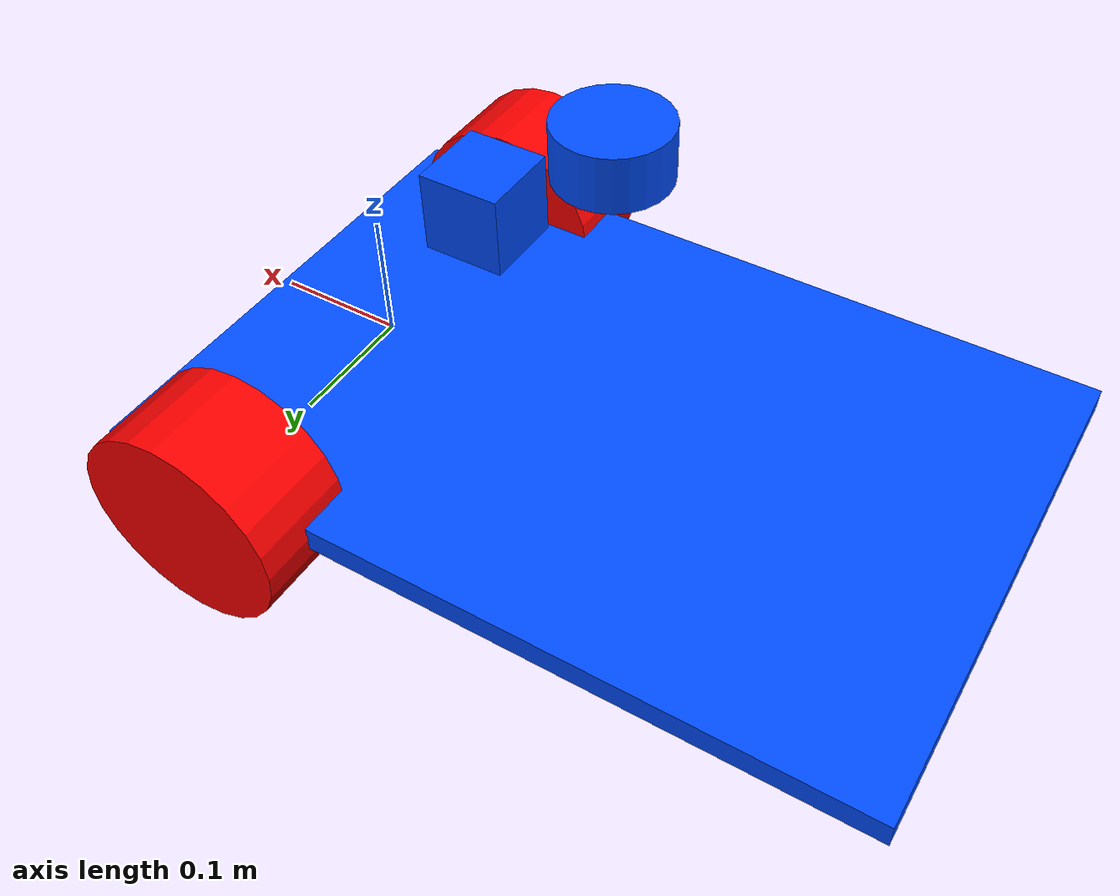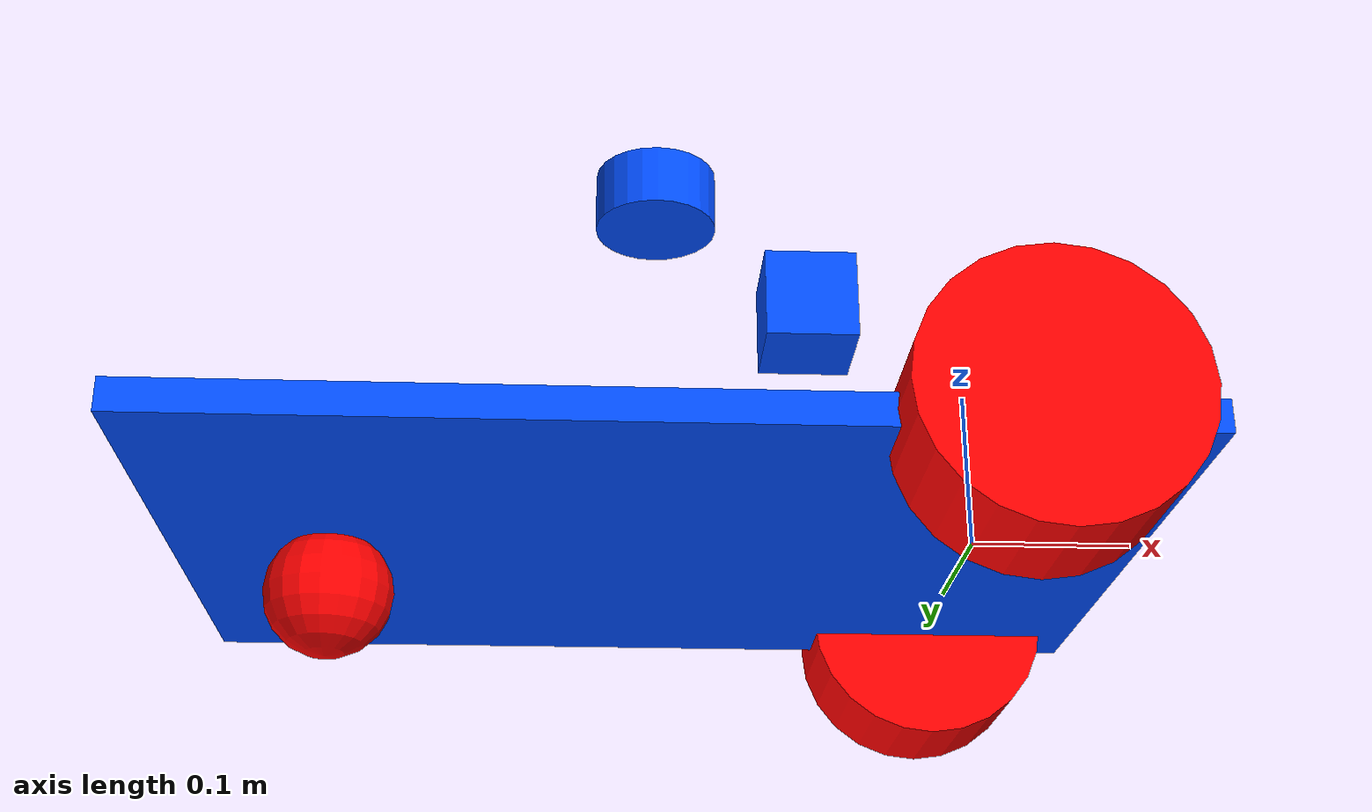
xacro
<robot name="bot" xmlns:xacro="http://wiki.ros.org/xacro">

<xacro:include filename="$(find bot_description)/urdf/inertials.xacro"/>

<xacro:property name="wheel_radius" value="0.08"/>

<material name="blue">
  <color rgba="0 0.3 1.0 1.0"/>
</material>
<material name="red">
  <color rgba="1 0 0 1.0"/>
</material>

<link name="base_footprint"/>

<link name="base_link">
  <xacro:solid_cuboid_inertial
    rpy="0 0 0" xyz="0 0 0" mass="0.4" x="0.6" y="0.4" z="0.02"
  />

  <visual>
    <origin xyz="0 0 0" rpy="0 0 0" />
    <geometry>
      <box size="0.6 0.4 0.02" />
    </geometry>
    <material name="blue"/>
  </visual>

  <collision>
    <origin xyz="0 0 0" rpy="0 0 0"/>
    <geometry>
      <box size="0.6 0.4 0.02" />
    </geometry>
  </collision>
</link>

<joint name="base_footprint_to_base_link" type="fixed">
  <origin xyz="-0.2 0 0 " rpy="0 0 0 "/>
  <parent link="base_footprint"/>
  <child link="base_link"/>
</joint>

<link name="front_left_wheel_link">
  <xacro:solid_cylinder_inertial
  rpy="0 0 0" xyz="0 0 0" mass="1" radius="${wheel_radius}" length="0.08"
  />

  <visual>
    <origin xyz="0 0 0" rpy="0 0 0" />
    <geometry>
      <cylinder radius="${wheel_radius}" length="0.08"/>
    </geometry>
    <material name="red"/>
  </visual>

  <collision>
    <origin xyz="0 0 0" rpy="0 0 0"/>
    <geometry>
      <cylinder radius="${wheel_radius}" length="0.08"/>
    </geometry>
  </collision>
</link>

<joint name="base_to_front_left_wheel_joint" type="continuous">
  <origin xyz="0.2 0.2 0" rpy="-1.57 0 0 "/>
  <parent link="base_link"/>
  <child link="front_left_wheel_link"/>
  <axis xyz="0 0 1"/>
</joint>

<link name="front_right_wheel_link">
  <xacro:solid_cylinder_inertial
  rpy="0 0 0" xyz="0 0 0" mass="1" radius="${wheel_radius}" length="0.08"
  />

  <visual>
    <origin xyz="0 0 0" rpy="0 0 0" />
    <geometry>
      <cylinder radius="${wheel_radius}" length="0.08"/>
    </geometry>
    <material name="red">
      <color rgba="1 0 0 1.0"/>
    </material>
  </visual>

  <collision>
    <origin xyz="0 0 0" rpy="0 0 0"/>
    <geometry>
      <cylinder radius="${wheel_radius}" length="0.08"/>
    </geometry>
  </collision>
</link>

<joint name="base_to_front_right_wheel_joint" type="continuous">
  <origin xyz="0.2 -0.2 0 " rpy="-1.57 0 0 "/>
  <parent link="base_link"/>
  <child link="front_right_wheel_link"/>
  <axis xyz="0 0 1"/>
</joint>

<link name="back_wheel_link">
  <xacro:solid_sphere_inertial
  rpy="0 0 0" xyz="0 0 0" mass="0.02" radius="0.04"
  />

  <visual>
    <origin xyz="0 0 0" rpy="0 0 0" />
    <geometry>
      <sphere radius="0.04"/>
    </geometry>
    <material name="red"/>
  </visual>

  <collision>
    <origin xyz="0 0 0" rpy="0 0 0"/>
    <geometry>
      <sphere radius="0.04"/>
    </geometry>
  </collision>
</link>

<joint name="base_link_to_back_wheel_link" type="fixed">
  <origin xyz="-0.2 0 -0.04" rpy="0 0 0 "/>
  <parent link="base_link"/>
  <child link="back_wheel_link"/>
</joint>

<link name="camera_link">
  <xacro:null_inertial/>

  <visual>
    <origin xyz="0 0 0" rpy="0 0 0" />
    <geometry>
      <box size="0.06 0.06 0.06" />
    </geometry>
    <material name="blue"/>
  </visual>

  <collision>
    <origin xyz="0 0 0" rpy="0 0 0"/>
    <geometry>
      <box size="0.06 0.06 0.06" />
    </geometry>
  </collision>
</link>

<joint name="base_link_to_camera_link" type="fixed">
  <origin xyz="0.1 0 0.16" rpy="0 0 0 "/>
  <parent link="base_link"/>
  <child link="camera_link"/>
</joint>

<link name="lidar_link">
  <xacro:null_inertial/>

  <visual>
    <origin xyz="0 0 0" rpy="0 0 0" />
    <geometry>
      <cylinder radius="0.04" length="0.04"/>
    </geometry>
    <material name="blue"/>
  </visual>

  <collision>
    <origin xyz="0 0 0" rpy="0 0 0"/>
    <geometry>
      <box size="0.06 0.06 0.06" />
    </geometry>
  </collision>
</link>

<joint name="base_link_to_lidar_link" type="fixed">
  <origin xyz="0 0 0.24" rpy="0 0 0 "/>
  <parent link="base_link"/>
  <child link="lidar_link"/>
</joint>

</robot>

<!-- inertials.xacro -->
<!--  xacro macros for inertials.

    Define xacro macros for math constants and inertials:

    - solid cuboid
    - solid cylinder
    - null (a placeholder inertial for logical link elements)
 -->
<robot name="inertials" xmlns:xacro="http://wiki.ros.org/xacro">

    <!-- Math constants -->
    <xacro:property name="math_pi"        value="3.141592653589793" />
    <xacro:property name="math_pi_over_2" value="1.5707963267948966" />
    <xacro:property name="math_pi_over_4" value="0.785398163397448" />

    <!-- Inertial for solid cuboid with dimensions x y z  -->
    <xacro:macro name="solid_cuboid_inertial" params="rpy:='0.0 0.0 0.0' xyz:='0.0 0.0 0.0' mass x y z">
        <inertial>
            <origin rpy="${rpy}" xyz="${xyz}"/>
            <mass value="${mass}" />
            <inertia
                ixx="${mass * (y * y + z * z) / 12.0}" ixy="0.0" ixz="0.0"
                iyy="${mass * (x * x + z * z) / 12.0}" iyz="0.0"
                izz="${mass * (x * x + y * y) / 12.0}" />
        </inertial>
    </xacro:macro>

    <!-- Inertial for solid cylinder with radius and length aligned to z-axis  -->
    <xacro:macro name="solid_cylinder_inertial" params="rpy:='0.0 0.0 0.0' xyz:='0.0 0.0 0.0' mass radius length">
        <inertial>
            <origin rpy="${rpy}" xyz="${xyz}"/>
            <mass value="${mass}" />
            <inertia
                ixx="${mass * (3.0 * radius * radius + length * length) / 12.0}" ixy="0.0" ixz="0.0"
                iyy="${mass * (3.0 * radius * radius + length * length) / 12.0}" iyz="0.0"
                izz="${mass * (radius * radius) / 2.0}" />
            </inertial>
    </xacro:macro>

    <!-- Inertial for solid cylinder with radius  -->
    <xacro:macro name="solid_sphere_inertial" params="rpy:='0.0 0.0 0.0' xyz:='0.0 0.0 0.0' mass radius">
        <inertial>
            <origin xyz="${xyz}" rpy="${rpy}" />
            <mass value="${mass}"/>
            <inertia
                    ixx="${2.0 * mass * ( radius * radius ) / 5.0}" ixy="0.0" ixz="0.0"
                    iyy="${2.0 * mass * ( radius * radius ) / 5.0}" iyz="0.0"
                    izz="${2.0 * mass * ( radius * radius ) / 5.0}"/>
        </inertial>
    </xacro:macro>

    <!-- A null inertial - used in placeholder links to esure the model will work in Gazebo -->
    <xacro:macro name="null_inertial">
        <inertial>
            <mass value="0.001"/>
            <inertia ixx="0.001" ixy="0" ixz="0" iyy="0.001" iyz="0" izz="0.001"/>
        </inertial>
    </xacro:macro>
</robot>
